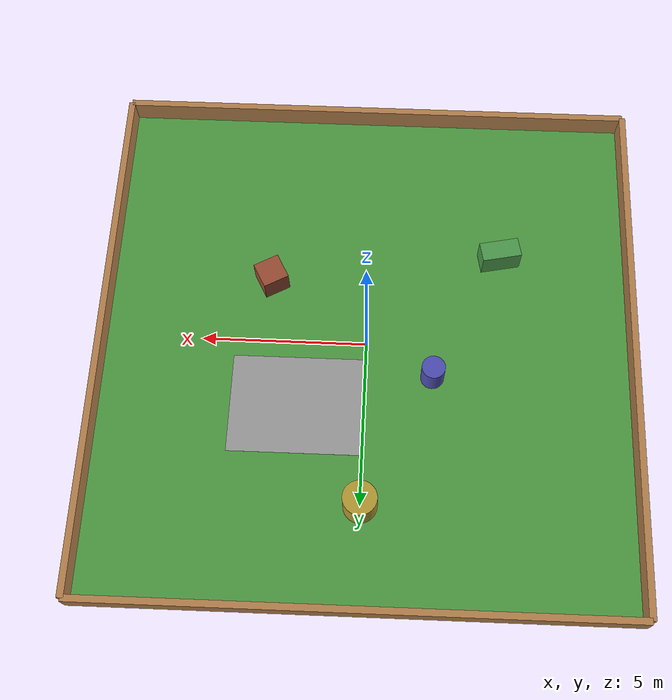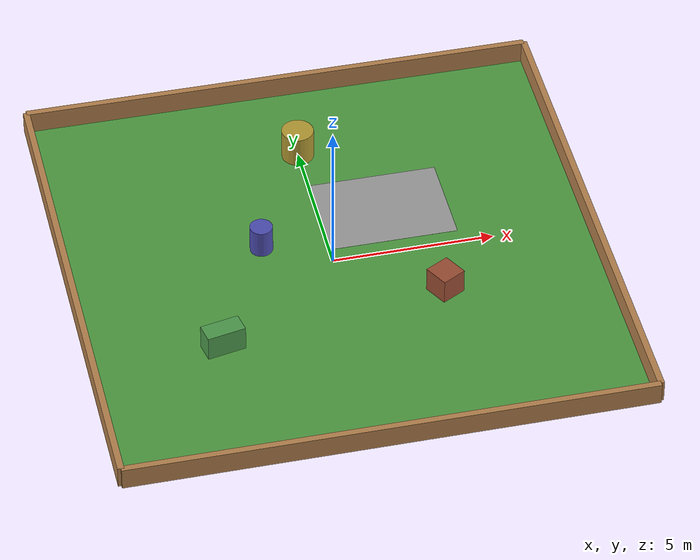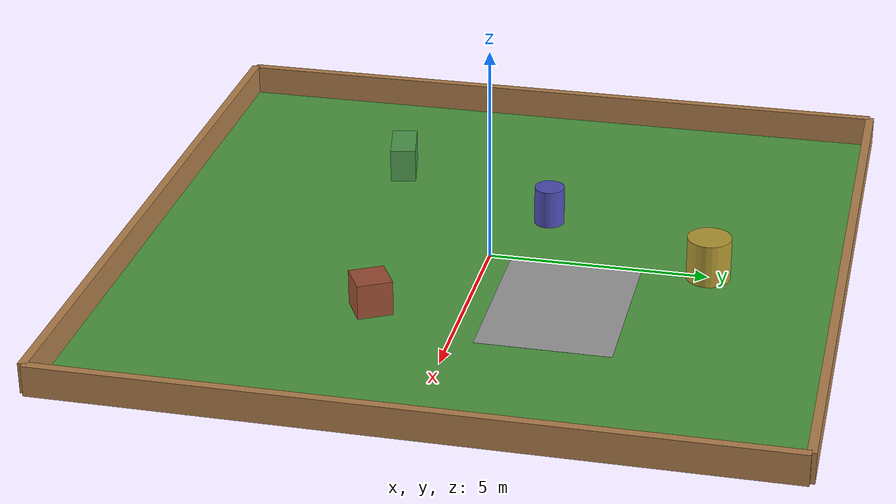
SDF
<sdf version="1.6">
  <world name="default">
    <physics type="ode">
      <max_step_size>0.001</max_step_size>
      <real_time_update_rate>1000</real_time_update_rate>
      <real_time_factor>1</real_time_factor>
      <ode>
        <solver>
          <type>quick</type>
          <iters>200</iters>
          <sor>1.3</sor>
        </solver>
        <constraints>
          <cfm>0.0</cfm>
          <erp>0.2</erp>
          <contact_max_correcting_vel>1.0</contact_max_correcting_vel>
          <contact_surface_layer>0.001</contact_surface_layer>
        </constraints>
      </ode>
    </physics>

    <include>
      <uri>model://sun</uri>
    </include>

    <!-- Lawn plane -->
    <model name="lawn_plane">
      <static>true</static>
      <pose>0 0 0 0 0 0</pose>
      <link name="link">
        <collision name="collision">
          <geometry><plane><normal>0 0 1</normal><size>16 16</size></plane></geometry>
        </collision>
        <visual name="visual">
          <geometry><plane><normal>0 0 1</normal><size>16 16</size></plane></geometry>
          <material>
            <script>
              <uri>file://media/materials/scripts/gazebo.material</uri>
              <name>Gazebo/Grass</name>
            </script>
            <ambient>0.35 0.55 0.35 1</ambient>
            <diffuse>0.45 0.70 0.45 1</diffuse>
          </material>
        </visual>
      </link>
    </model>

    <!-- Bounded lawn (fence walls) -->
    <model name="fence_north">
      <static>true</static>
      <pose>0 8 0.35 0 0 0</pose>
      <link name="link">
        <collision name="collision">
          <geometry><box><size>16 0.2 0.7</size></box></geometry>
        </collision>
        <visual name="visual">
          <geometry><box><size>16 0.2 0.7</size></box></geometry>
          <material>
            <script>
              <uri>file://media/materials/scripts/gazebo.material</uri>
              <name>Gazebo/WoodFloor</name>
            </script>
            <ambient>0.35 0.25 0.16 1</ambient>
            <diffuse>0.55 0.38 0.22 1</diffuse>
          </material>
        </visual>
      </link>
    </model>

    <model name="fence_south">
      <static>true</static>
      <pose>0 -8 0.35 0 0 0</pose>
      <link name="link">
        <collision name="collision"><geometry><box><size>16 0.2 0.7</size></box></geometry></collision>
        <visual name="visual">
          <geometry><box><size>16 0.2 0.7</size></box></geometry>
          <material>
            <script>
              <uri>file://media/materials/scripts/gazebo.material</uri>
              <name>Gazebo/WoodFloor</name>
            </script>
            <ambient>0.35 0.25 0.16 1</ambient>
            <diffuse>0.55 0.38 0.22 1</diffuse>
          </material>
        </visual>
      </link>
    </model>

    <model name="fence_east">
      <static>true</static>
      <pose>8 0 0.35 0 0 0</pose>
      <link name="link">
        <collision name="collision"><geometry><box><size>0.2 16 0.7</size></box></geometry></collision>
        <visual name="visual">
          <geometry><box><size>0.2 16 0.7</size></box></geometry>
          <material>
            <script>
              <uri>file://media/materials/scripts/gazebo.material</uri>
              <name>Gazebo/WoodFloor</name>
            </script>
            <ambient>0.35 0.25 0.16 1</ambient>
            <diffuse>0.55 0.38 0.22 1</diffuse>
          </material>
        </visual>
      </link>
    </model>

    <model name="fence_west">
      <static>true</static>
      <pose>-8 0 0.35 0 0 0</pose>
      <link name="link">
        <collision name="collision"><geometry><box><size>0.2 16 0.7</size></box></geometry></collision>
        <visual name="visual">
          <geometry><box><size>0.2 16 0.7</size></box></geometry>
          <material>
            <script>
              <uri>file://media/materials/scripts/gazebo.material</uri>
              <name>Gazebo/WoodFloor</name>
            </script>
            <ambient>0.35 0.25 0.16 1</ambient>
            <diffuse>0.55 0.38 0.22 1</diffuse>
          </material>
        </visual>
      </link>
    </model>

    <!-- Concrete no-cut patch -->
    <model name="concrete_patch">
      <static>true</static>
      <!-- Keep this as a visual-only surface marker.
           It should not act as a physical curb/obstacle. -->
      <pose>2 2 0.0005 0 0 0</pose>
      <link name="link">
        <visual name="visual">
          <geometry><box><size>4 3 0.001</size></box></geometry>
          <material>
            <script>
              <uri>file://media/materials/scripts/gazebo.material</uri>
              <name>Gazebo/Grey</name>
            </script>
            <ambient>0.55 0.55 0.55 1</ambient>
            <diffuse>0.72 0.72 0.72 1</diffuse>
          </material>
        </visual>
      </link>
    </model>

    <!-- Randomized-looking obstacle set -->
    <model name="random_obstacle_box_1">
      <static>true</static>
      <pose>3 -2 0.4 0 0 0.5</pose>
      <link name="link">
        <collision name="collision"><geometry><box><size>0.8 0.8 0.8</size></box></geometry></collision>
        <visual name="visual">
          <geometry><box><size>0.8 0.8 0.8</size></box></geometry>
          <material><ambient>0.4 0.2 0.1 1</ambient><diffuse>0.6 0.3 0.2 1</diffuse></material>
        </visual>
      </link>
    </model>

    <model name="random_obstacle_box_2">
      <static>true</static>
      <pose>-4 -3 0.4 0 0 0.2</pose>
      <link name="link">
        <collision name="collision"><geometry><box><size>1.2 0.6 0.8</size></box></geometry></collision>
        <visual name="visual">
          <geometry><box><size>1.2 0.6 0.8</size></box></geometry>
          <material><ambient>0.2 0.4 0.2 1</ambient><diffuse>0.3 0.6 0.3 1</diffuse></material>
        </visual>
      </link>
    </model>

    <model name="random_obstacle_cyl_1">
      <static>true</static>
      <pose>-2 1 0.45 0 0 0</pose>
      <link name="link">
        <collision name="collision"><geometry><cylinder><radius>0.35</radius><length>0.9</length></cylinder></geometry></collision>
        <visual name="visual">
          <geometry><cylinder><radius>0.35</radius><length>0.9</length></cylinder></geometry>
          <material><ambient>0.2 0.2 0.5 1</ambient><diffuse>0.3 0.3 0.7 1</diffuse></material>
        </visual>
      </link>
    </model>

    <model name="random_obstacle_cyl_2">
      <static>true</static>
      <pose>0 5 0.5 0 0 0</pose>
      <link name="link">
        <collision name="collision"><geometry><cylinder><radius>0.5</radius><length>1.0</length></cylinder></geometry></collision>
        <visual name="visual">
          <geometry><cylinder><radius>0.5</radius><length>1.0</length></cylinder></geometry>
          <material><ambient>0.5 0.4 0.1 1</ambient><diffuse>0.7 0.6 0.2 1</diffuse></material>
        </visual>
      </link>
    </model>
  </world>
</sdf>
